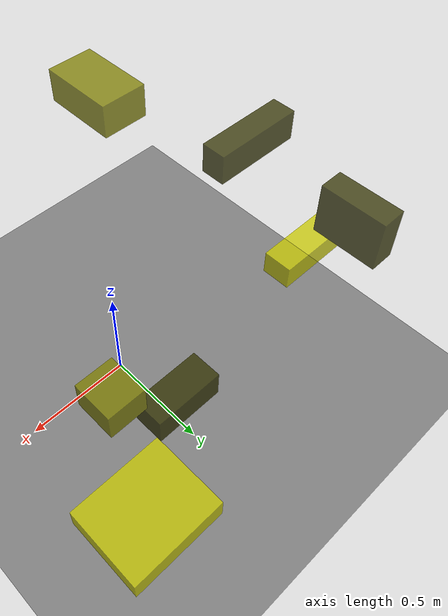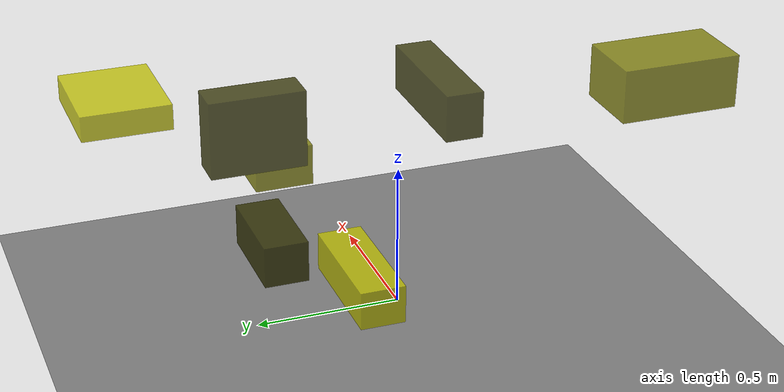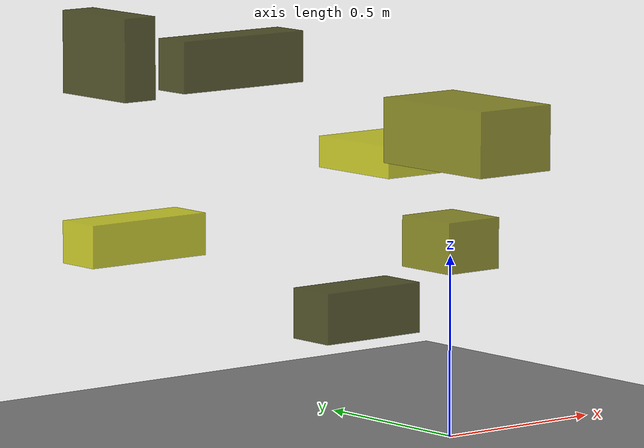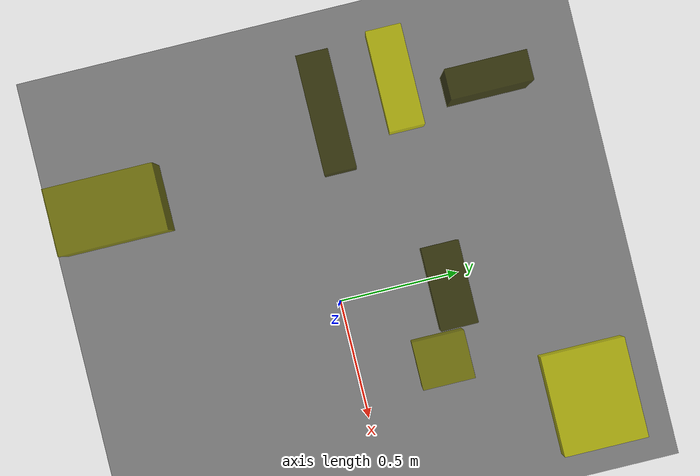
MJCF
<?xml version="1.0"?>
<mujoco model="obstacle_scene">
  <compiler angle="radian" coordinate="local"/>
  <option timestep="0.001" gravity="0 0 -9.81"/>

  <asset>
    <material name="obstacle_mat" rgba="0.8 0.8 0.0 0.8"/>
    <material name="ground_mat" rgba="0.5 0.5 0.5 1"/>
  </asset>

  <worldbody>
    <!-- Ground plane -->
    <geom name="ground" type="plane" size="3 3 0.1" material="ground_mat"/>

    <!-- Obstacles -->
    <body name="obstacle_0" pos="-0.649451 0.675861 1.038243">
      <geom name="obs_0" type="box" size="0.051837 0.139766 0.114318" rgba="0.2 0.2 0.0 0.8"/>
    </body>
    <body name="obstacle_1" pos="-0.525915 -0.674667 0.953522">
      <geom name="obs_1" type="box" size="0.117286 0.191251 0.085236" rgba="0.5 0.5 0.0 0.8"/>
    </body>
    <body name="obstacle_2" pos="-0.772580 0.404614 0.578445">
      <geom name="obs_2" type="box" size="0.190632 0.066700 0.057743" rgba="0.8 0.8 0.0 0.8"/>
    </body>
    <body name="obstacle_3" pos="0.029861 0.435215 0.290788">
      <geom name="obs_3" type="box" size="0.165987 0.074834 0.071386" rgba="0.2 0.2 0.0 0.8"/>
    </body>
    <body name="obstacle_4" pos="0.287915 0.335726 0.469898">
      <geom name="obs_4" type="box" size="0.091813 0.100324 0.072330" rgba="0.5 0.5 0.0 0.8"/>
    </body>
    <body name="obstacle_5" pos="0.532087 0.829713 0.649723">
      <geom name="obs_5" type="box" size="0.186972 0.156474 0.045492" rgba="0.8 0.8 0.0 0.8"/>
    </body>
    <body name="obstacle_6" pos="-0.658769 0.127189 1.077200">
      <geom name="obs_6" type="box" size="0.201534 0.054785 0.068858" rgba="0.2 0.2 0.0 0.8"/>
    </body>
  </worldbody>
</mujoco>
